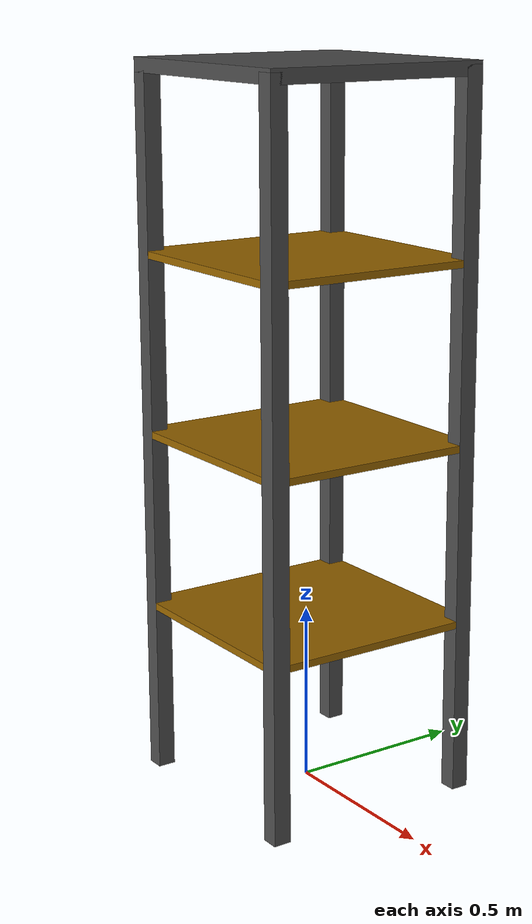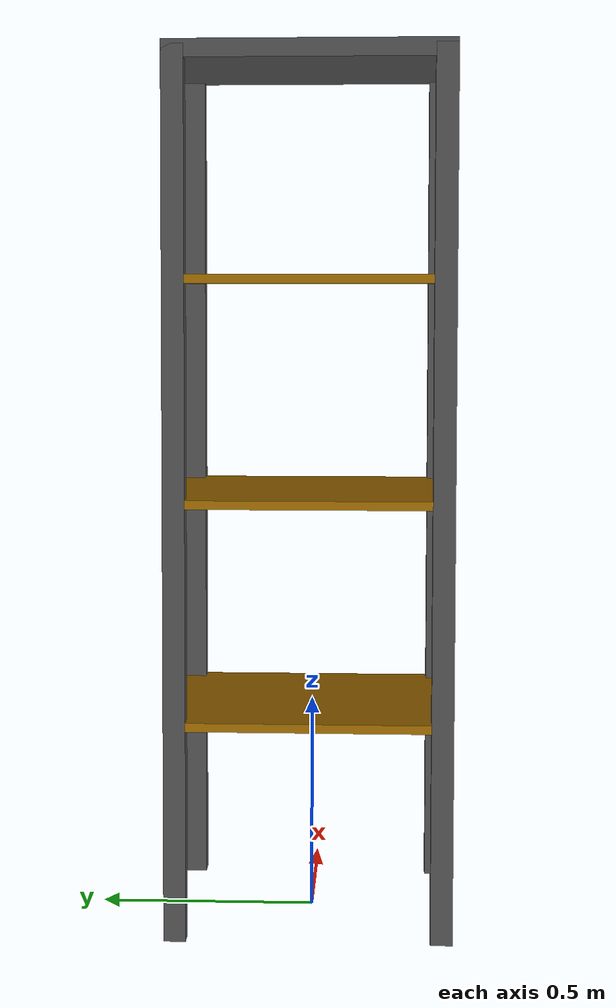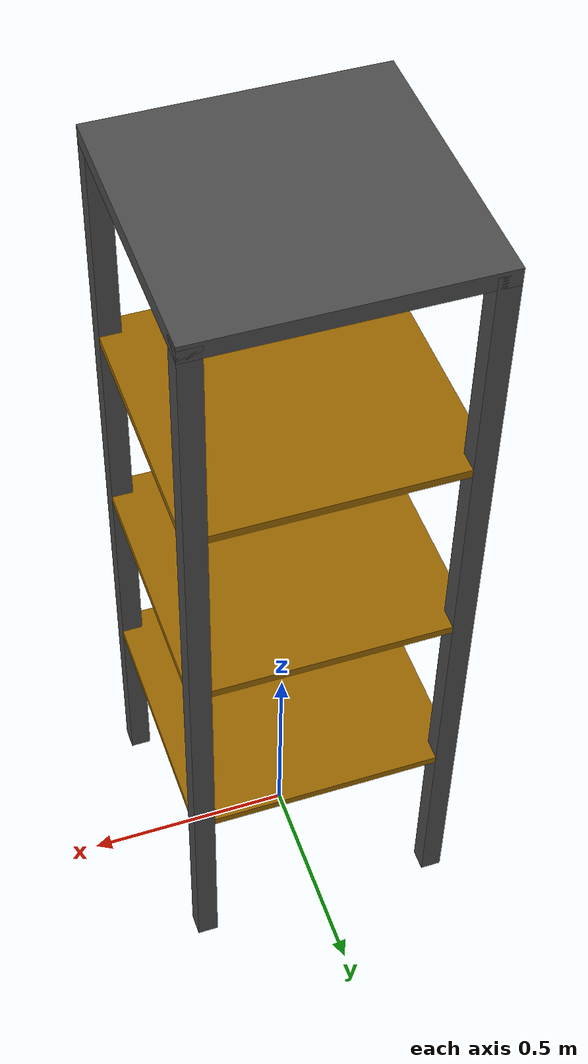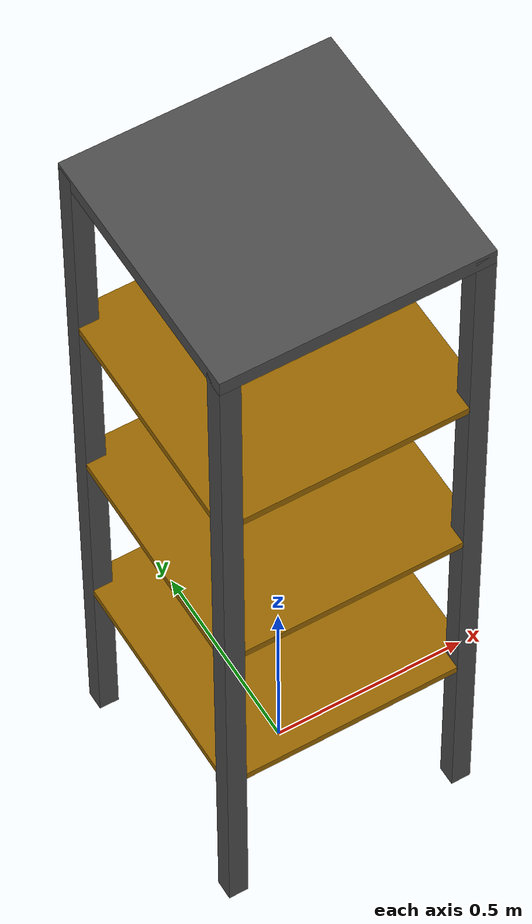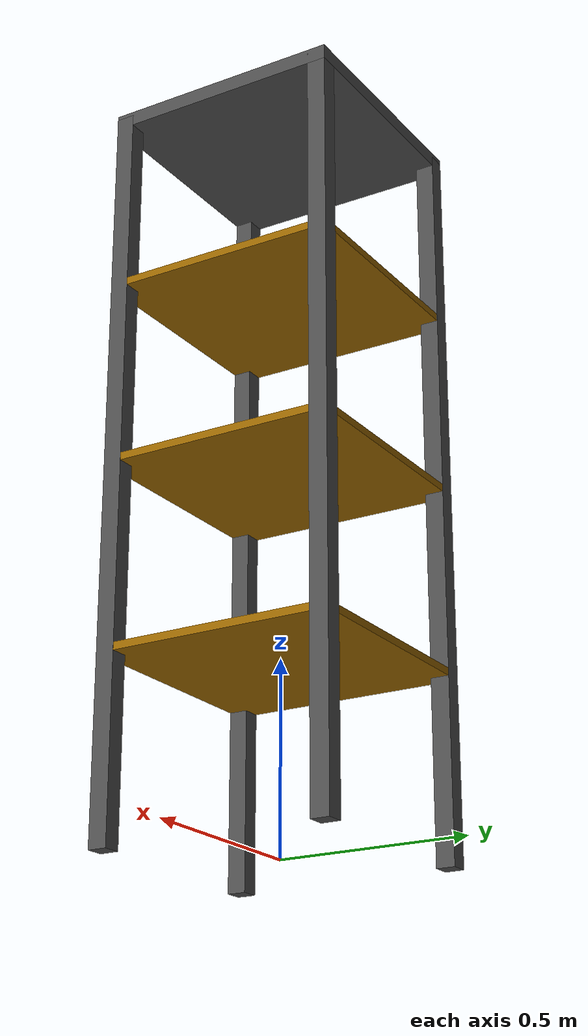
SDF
<?xml version='1.0'?>
<sdf version="1.4">
  <model name="warehouse_shelf">
    <static>true</static>
    <pose>0 0 0 0 0 0</pose>

    <!-- MAIN COLLIDER -->

    <link name="main_block">
      <pose>0 0 1.25 0 0 0</pose>
      <collision name="collision"><geometry><box><size>.65 .65 1.5</size></box></geometry></collision>
       </link>

    <!-- LEGS -->

    <link name="leg_1">
        <pose>  .3  .3 1 0 0 0</pose>
        <collision name="collision"><geometry><box><size> .05 .05 2</size></box></geometry></collision>
        <visual name="visual">      <geometry><box><size> .05 .05 2</size></box></geometry>
        <material><ambient>.2 .2 .2 1</ambient>
                  <diffuse>.3 .3 .3 1</diffuse></material></visual></link>
    <link name="leg_2">
        <pose> -.3  .3 1 0 0 0</pose>
        <collision name="collision"><geometry><box><size> .05 .05 2</size></box></geometry></collision>
        <visual name="visual">      <geometry><box><size> .05 .05 2</size></box></geometry>
        <material><ambient>.2 .2 .2 1</ambient>
                  <diffuse>.3 .3 .3 1</diffuse></material></visual></link>
    <link name="leg_3">
        <pose> -.3 -.3 1 0 0 0</pose>
        <collision name="collision"><geometry><box><size> .05 .05 2</size></box></geometry></collision>
        <visual name="visual">      <geometry><box><size> .05 .05 2</size></box></geometry>
        <material><ambient>.2 .2 .2 1</ambient>
                  <diffuse>.3 .3 .3 1</diffuse></material></visual></link>
    <link name="leg_4">
        <pose>  .3 -.3 1 0 0 0</pose>
        <collision name="collision"><geometry><box><size> .05 .05 2</size></box></geometry></collision>
        <visual name="visual">      <geometry><box><size> .05 .05 2</size></box></geometry>
        <material><ambient>.2 .2 .2 1</ambient>
                  <diffuse>.3 .3 .3 1</diffuse></material></visual></link>

    <!-- SHELFS -->

    <link name="shelf_0">
        <pose>0 0 .49 0 0 0</pose>
        <visual name="visual"><geometry><box><size>.649 .649 .02</size></box></geometry>
        <material><ambient>.2 .05 0 1</ambient>
                  <diffuse>.6 .4 0 1</diffuse></material></visual></link>

    <link name="shelf_1">
        <pose>0 0 .99 0 0 0</pose>
        <visual name="visual"><geometry><box><size>.649 .649 .02</size></box></geometry>
        <material><ambient>.2 .05 0 1</ambient>
                  <diffuse>.6 .4 0 1</diffuse></material></visual></link>

    <link name="shelf_2">
        <pose>0 0 1.49 0 0 0</pose>
        <visual name="visual"><geometry><box><size>.649 .649 .02</size></box></geometry>
        <material><ambient>.2 .05 0 1</ambient>
                  <diffuse>.6 .4 0 1</diffuse></material></visual></link>

    <link name="shelf_top">
        <pose>0 0 1.99 0 0 0</pose>
        <visual name="visual"><geometry><box><size>.65 .65 .04</size></box></geometry>
        <material><ambient>.2 .2 .2 1</ambient>
                  <diffuse>.3 .3 .3 1</diffuse></material></visual></link>

  </model>
</sdf>
